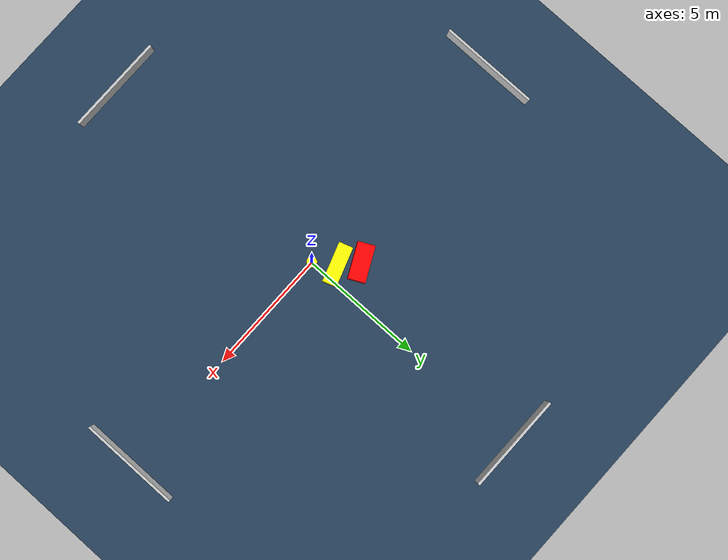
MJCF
<?xml version="1.0" ?>
<mujoco model="generated_environment">
  <option timestep="0.01" integrator="RK4" cone="elliptic"/>
  <default>
    <geom density="1"/>
  </default>
  <asset>
    <texture builtin="gradient" height="3072" name="skybox" rgb1="0.3 0.5 0.7" rgb2="0 0 0" type="skybox" width="512"/>
    <texture builtin="checker" height="300" name="groundplane" rgb1="0.2 0.3 0.4" rgb2="0.1 0.2 0.3" type="2d" width="300"/>
    <material name="groundplane" reflectance="0.2" texrepeat="5 5" texture="groundplane"/>
  </asset>
  <worldbody>
    <light dir="0 0 -1" directional="true" pos="0 0 1.5"/>
    <geom condim="3" friction="0.5 0.005 0.001" material="groundplane" name="floor" pos="0 0 0" size="0 0 0.05" type="plane"/>
    <body name="walls">
      <geom name="wall_1" condim="4" pos="-10.0 0.0 0.3" rgba="0.800000011920929 0.800000011920929 0.800000011920929 1.0" size="0.05 2.0 0.3" type="box"/>
      <geom name="wall_2" condim="4" pos="10.0 0.0 0.3" rgba="0.800000011920929 0.800000011920929 0.800000011920929 1.0" size="0.05 2.0 0.3" type="box"/>
      <geom name="wall_3" condim="4" pos="0.0 -10.0 0.3" rgba="0.800000011920929 0.800000011920929 0.800000011920929 1.0" size="2.0 0.05 0.3" type="box"/>
      <geom name="wall_4" condim="4" pos="0.0 10.0 0.3" rgba="0.800000011920929 0.800000011920929 0.800000011920929 1.0" size="2.0 0.05 0.3" type="box"/>
    </body>
    <body name="robot">
      <joint name="joint_x" type="slide" pos="0 0 0" axis="1 0 0"/>
      <joint name="joint_y" type="slide" pos="0 0 0" axis="0 1 0"/>
      <geom name="robot" type="cylinder" pos="0.0 0.0 0.2" size="0.2 0.2 0.0" mass="5.0" friction="1.0 0.005 0.0001" condim="4" rgba="1.0 1.0 0.0 1.0"/>
    </body>
    <body name="obstacle_1_movable">
      <geom name="obstacle_1_movable" condim="4" pos="-0.5702481097792875 0.7838700464009408 0.3" euler="0 0 288.62321321560745" friction="0.0 0.005 0.001" rgba="1.0 1.0 0.0 1.0" size="0.2855718240314475 0.7975396072181864 0.3" type="box" mass="0.1"/>
      <joint type="free"/>
    </body>
    <body name="obstacle_2_static">
      <geom name="obstacle_2_static" condim="4" pos="-1.2275387582866135 1.385439006644963 0.3" euler="0 0 116.40371995889417" friction="0.0 0.005 0.001" rgba="1.0 0.0 0.0 1.0" size="0.34405679290327873 0.7223314176820586 0.3" type="box"/>
    </body>
  </worldbody>
  <actuator>
    <motor name="actuator_x" joint="joint_x" gear="1" ctrlrange="-1 1"/>
    <motor name="actuator_y" joint="joint_y" gear="1" ctrlrange="-1 1"/>
  </actuator>
</mujoco>
